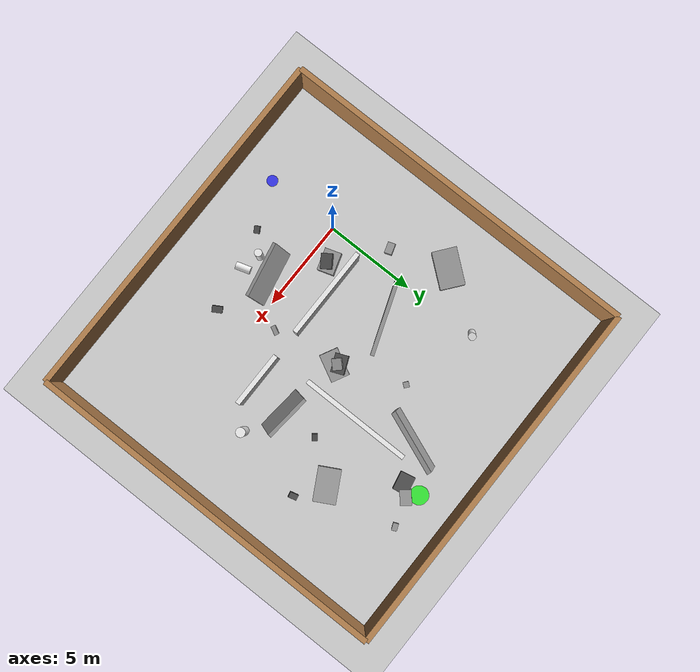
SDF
<?xml version="1.0" ?>
<sdf version="1.6">
  <world name="disaster_collapsed_building">

    <!--  PHYSICS                                                      -->
    <physics name="default_physics" default="0" type="ode">
      <max_step_size>0.001</max_step_size>
      <real_time_factor>1.0</real_time_factor>
      <real_time_update_rate>1000.0</real_time_update_rate>
      <ode>
        <solver>
          <type>quick</type>
          <iters>150</iters>
          <precon_iters>0</precon_iters>
          <sor>1.400000</sor>
        </solver>
        <constraints>
          <cfm>0</cfm>
          <erp>0.2</erp>
          <contact_max_correcting_vel>2000</contact_max_correcting_vel>
          <contact_surface_layer>0.01</contact_surface_layer>
        </constraints>
      </ode>
    </physics>

    <!--  SCENE (reduced lighting to simulate disaster atmosphere)    -->
    <scene>
      <ambient>0.3 0.25 0.2 1</ambient>
      <background>0.4 0.35 0.3 1</background>
      <shadows>true</shadows>
      <sky>
        <clouds>
          <speed>4</speed>
        </clouds>
      </sky>
    </scene>

    <!--  SUN (angled low — simulates dust-filtered post-disaster sky) -->
    <light name="disaster_sun" type="directional">
      <cast_shadows>true</cast_shadows>
      <pose>0 0 20 0 0.4 0.7</pose>
      <diffuse>0.7 0.65 0.5 1</diffuse>
      <specular>0.1 0.1 0.08 1</specular>
      <direction>-0.5 0.3 -0.7</direction>
      <attenuation>
        <range>1000</range>
        <constant>0.9</constant>
        <linear>0.01</linear>
        <quadratic>0.001</quadratic>
      </attenuation>
    </light>

    <!-- Dim fill light from above -->
    <light name="fill_light" type="point">
      <pose>5 3 8 0 0 0</pose>
      <diffuse>0.3 0.28 0.25 1</diffuse>
      <specular>0.05 0.05 0.05 1</specular>
      <attenuation>
        <range>20</range>
        <constant>0.7</constant>
        <linear>0.1</linear>
        <quadratic>0.01</quadratic>
      </attenuation>
    </light>

    <!--  GROUND PLANE (cracked concrete texture)                     -->
    <model name="ground_plane">
      <static>true</static>
      <link name="link">
        <collision name="collision">
          <geometry>
            <plane>
              <normal>0 0 1</normal>
              <size>30 30</size>
            </plane>
          </geometry>
          <surface>
            <friction>
              <ode>
                <mu>0.8</mu>
                <mu2>0.8</mu2>
              </ode>
            </friction>
          </surface>
        </collision>
        <visual name="visual">
          <cast_shadows>false</cast_shadows>
          <geometry>
            <plane>
              <normal>0 0 1</normal>
              <size>30 30</size>
            </plane>
          </geometry>
          <material>
            <script>
              <uri>file://media/materials/scripts/gazebo.material</uri>
              <name>Gazebo/Grey</name>
            </script>
          </material>
        </visual>
      </link>
    </model>

    <!--  BOUNDARY WALLS (outer perimeter of the building)            -->

    <!-- South wall (entrance side) -->
    <model name="boundary_south">
      <static>true</static>
      <pose>5 -6 1.0 0 0 0</pose>
      <link name="link">
        <collision name="collision">
          <geometry><box><size>20 0.3 2.0</size></box></geometry>
        </collision>
        <visual name="visual">
          <geometry><box><size>20 0.3 2.0</size></box></geometry>
          <material><script><uri>file://media/materials/scripts/gazebo.material</uri><name>Gazebo/WoodFloor</name></script></material>
        </visual>
      </link>
    </model>

    <!-- North wall -->
    <model name="boundary_north">
      <static>true</static>
      <pose>5 14 1.0 0 0 0</pose>
      <link name="link">
        <collision name="collision">
          <geometry><box><size>20 0.3 2.0</size></box></geometry>
        </collision>
        <visual name="visual">
          <geometry><box><size>20 0.3 2.0</size></box></geometry>
          <material><script><uri>file://media/materials/scripts/gazebo.material</uri><name>Gazebo/WoodFloor</name></script></material>
        </visual>
      </link>
    </model>

    <!-- West wall -->
    <model name="boundary_west">
      <static>true</static>
      <pose>-5 4 1.0 0 0 1.5708</pose>
      <link name="link">
        <collision name="collision">
          <geometry><box><size>20 0.3 2.0</size></box></geometry>
        </collision>
        <visual name="visual">
          <geometry><box><size>20 0.3 2.0</size></box></geometry>
          <material><script><uri>file://media/materials/scripts/gazebo.material</uri><name>Gazebo/WoodFloor</name></script></material>
        </visual>
      </link>
    </model>

    <!-- East wall -->
    <model name="boundary_east">
      <static>true</static>
      <pose>15 4 1.0 0 0 1.5708</pose>
      <link name="link">
        <collision name="collision">
          <geometry><box><size>20 0.3 2.0</size></box></geometry>
        </collision>
        <visual name="visual">
          <geometry><box><size>20 0.3 2.0</size></box></geometry>
          <material><script><uri>file://media/materials/scripts/gazebo.material</uri><name>Gazebo/WoodFloor</name></script></material>
        </visual>
      </link>
    </model>

    <!--  INTERIOR WALLS (building room dividers, partially standing) -->

    <!-- Interior wall 1 — partial east-west divider (room 1 vs room 2) -->
    <model name="interior_wall_1a">
      <static>true</static>
      <pose>3 2 0.9 0 0 0</pose>
      <link name="link">
        <collision name="collision">
          <geometry><box><size>5 0.25 1.8</size></box></geometry>
        </collision>
        <visual name="visual">
          <geometry><box><size>5 0.25 1.8</size></box></geometry>
          <material><script><uri>file://media/materials/scripts/gazebo.material</uri><name>Gazebo/White</name></script></material>
        </visual>
      </link>
    </model>

    <!-- Gap in wall 1 (simulates wall collapse) — continues on the other side -->
    <model name="interior_wall_1b">
      <static>true</static>
      <pose>8.5 2 0.9 0 0 0</pose>
      <link name="link">
        <collision name="collision">
          <geometry><box><size>3 0.25 1.8</size></box></geometry>
        </collision>
        <visual name="visual">
          <geometry><box><size>3 0.25 1.8</size></box></geometry>
          <material><script><uri>file://media/materials/scripts/gazebo.material</uri><name>Gazebo/White</name></script></material>
        </visual>
      </link>
    </model>

    <!-- Interior wall 2 — north-south partial divider (room 2 corridor) -->
    <model name="interior_wall_2">
      <static>true</static>
      <pose>7 7 0.9 0 0 1.5708</pose>
      <link name="link">
        <collision name="collision">
          <geometry><box><size>6 0.25 1.8</size></box></geometry>
        </collision>
        <visual name="visual">
          <geometry><box><size>6 0.25 1.8</size></box></geometry>
          <material><script><uri>file://media/materials/scripts/gazebo.material</uri><name>Gazebo/White</name></script></material>
        </visual>
      </link>
    </model>

    <!--  COLLAPSED WALL SECTIONS (tilted, fallen)                    -->

    <!-- Collapsed wall A — tilted 30° forward, blocking corridor -->
    <model name="collapsed_wall_A">
      <static>true</static>
      <pose>4 -1 0.6 0.52 0 0.2</pose>
      <link name="link">
        <collision name="collision">
          <geometry><box><size>3.0 0.2 1.5</size></box></geometry>
          <surface><friction><ode><mu>1.0</mu><mu2>1.0</mu2></ode></friction></surface>
        </collision>
        <visual name="visual">
          <geometry><box><size>3.0 0.2 1.5</size></box></geometry>
          <material><script><uri>file://media/materials/scripts/gazebo.material</uri><name>Gazebo/Grey</name></script></material>
        </visual>
      </link>
    </model>

    <!-- Collapsed wall B — fallen flat, acts as floor obstacle/ramp -->
    <model name="collapsed_wall_B">
      <static>true</static>
      <pose>2 5 0.15 0 0.15 0.35</pose>
      <link name="link">
        <collision name="collision">
          <geometry><box><size>4.0 0.2 1.2</size></box></geometry>
        </collision>
        <visual name="visual">
          <geometry><box><size>4.0 0.2 1.2</size></box></geometry>
          <material><script><uri>file://media/materials/scripts/gazebo.material</uri><name>Gazebo/Grey</name></script></material>
        </visual>
      </link>
    </model>

    <!-- Collapsed wall C — leaning against rubble, creates narrow passage -->
    <model name="collapsed_wall_C">
      <static>true</static>
      <pose>9 4 0.7 -0.4 0 -0.1</pose>
      <link name="link">
        <collision name="collision">
          <geometry><box><size>2.5 0.2 1.8</size></box></geometry>
        </collision>
        <visual name="visual">
          <geometry><box><size>2.5 0.2 1.8</size></box></geometry>
          <material><script><uri>file://media/materials/scripts/gazebo.material</uri><name>Gazebo/Grey</name></script></material>
        </visual>
      </link>
    </model>

    <!-- Collapsed wall D — partially blocks the far room entrance -->
    <model name="collapsed_wall_D">
      <static>true</static>
      <pose>6 10 0.5 0.3 0 1.2</pose>
      <link name="link">
        <collision name="collision">
          <geometry><box><size>3.5 0.25 1.4</size></box></geometry>
        </collision>
        <visual name="visual">
          <geometry><box><size>3.5 0.25 1.4</size></box></geometry>
          <material><script><uri>file://media/materials/scripts/gazebo.material</uri><name>Gazebo/Grey</name></script></material>
        </visual>
      </link>
    </model>

    <!--  RUBBLE PILES (irregular debris clusters)                    -->

    <!-- Rubble pile 1 — entrance area, forces robot to navigate around -->
    <model name="rubble_pile_1_base">
      <static>true</static>
      <pose>1.5 1.0 0.2 0.1 0.05 0.3</pose>
      <link name="link">
        <collision name="collision"><geometry><box><size>1.2 0.9 0.4</size></box></geometry></collision>
        <visual name="visual">
          <geometry><box><size>1.2 0.9 0.4</size></box></geometry>
          <material><script><uri>file://media/materials/scripts/gazebo.material</uri><name>Gazebo/Grey</name></script></material>
        </visual>
      </link>
    </model>
    <model name="rubble_pile_1_top">
      <static>true</static>
      <pose>1.6 0.9 0.5 0.2 0.1 0.6</pose>
      <link name="link">
        <collision name="collision"><geometry><box><size>0.8 0.6 0.3</size></box></geometry></collision>
        <visual name="visual">
          <geometry><box><size>0.8 0.6 0.3</size></box></geometry>
          <material><script><uri>file://media/materials/scripts/gazebo.material</uri><name>Gazebo/DarkGrey</name></script></material>
        </visual>
      </link>
    </model>

    <!-- Rubble pile 2 — mid-corridor, forces narrow passage -->
    <model name="rubble_pile_2_base">
      <static>true</static>
      <pose>5.5 4.5 0.25 0.05 0.1 1.1</pose>
      <link name="link">
        <collision name="collision"><geometry><box><size>1.5 1.0 0.5</size></box></geometry></collision>
        <visual name="visual">
          <geometry><box><size>1.5 1.0 0.5</size></box></geometry>
          <material><script><uri>file://media/materials/scripts/gazebo.material</uri><name>Gazebo/Grey</name></script></material>
        </visual>
      </link>
    </model>
    <model name="rubble_pile_2_mid">
      <static>true</static>
      <pose>5.3 4.7 0.6 0.15 0.05 0.4</pose>
      <link name="link">
        <collision name="collision"><geometry><box><size>1.0 0.7 0.3</size></box></geometry></collision>
        <visual name="visual">
          <geometry><box><size>1.0 0.7 0.3</size></box></geometry>
          <material><script><uri>file://media/materials/scripts/gazebo.material</uri><name>Gazebo/DarkGrey</name></script></material>
        </visual>
      </link>
    </model>
    <model name="rubble_pile_2_top">
      <static>true</static>
      <pose>5.4 4.6 0.85 0.2 0.15 0.8</pose>
      <link name="link">
        <collision name="collision"><geometry><box><size>0.6 0.5 0.25</size></box></geometry></collision>
        <visual name="visual">
          <geometry><box><size>0.6 0.5 0.25</size></box></geometry>
          <material><script><uri>file://media/materials/scripts/gazebo.material</uri><name>Gazebo/Grey</name></script></material>
        </visual>
      </link>
    </model>

    <!-- Rubble pile 3 — corner obstruction near goal -->
    <model name="rubble_pile_3_base">
      <static>true</static>
      <pose>10.5 8 0.2 0.0 0.0 0.5</pose>
      <link name="link">
        <collision name="collision"><geometry><box><size>1.8 1.2 0.4</size></box></geometry></collision>
        <visual name="visual">
          <geometry><box><size>1.8 1.2 0.4</size></box></geometry>
          <material><script><uri>file://media/materials/scripts/gazebo.material</uri><name>Gazebo/Grey</name></script></material>
        </visual>
      </link>
    </model>

    <!-- Rubble pile 4 — against west side, creates dead-end illusion -->
    <model name="rubble_pile_4">
      <static>true</static>
      <pose>-2 6 0.3 0.1 0.05 0.9</pose>
      <link name="link">
        <collision name="collision"><geometry><box><size>2.0 1.3 0.6</size></box></geometry></collision>
        <visual name="visual">
          <geometry><box><size>2.0 1.3 0.6</size></box></geometry>
          <material><script><uri>file://media/materials/scripts/gazebo.material</uri><name>Gazebo/Grey</name></script></material>
        </visual>
      </link>
    </model>

    <!-- Rubble pile 5 — corridor to final room -->
    <model name="rubble_pile_5_a">
      <static>true</static>
      <pose>8 11 0.15 0 0 0.2</pose>
      <link name="link">
        <collision name="collision"><geometry><box><size>1.0 0.8 0.3</size></box></geometry></collision>
        <visual name="visual">
          <geometry><box><size>1.0 0.8 0.3</size></box></geometry>
          <material><script><uri>file://media/materials/scripts/gazebo.material</uri><name>Gazebo/DarkGrey</name></script></material>
        </visual>
      </link>
    </model>
    <model name="rubble_pile_5_b">
      <static>true</static>
      <pose>8.5 11.5 0.2 0.1 0 0.7</pose>
      <link name="link">
        <collision name="collision"><geometry><box><size>0.8 0.6 0.4</size></box></geometry></collision>
        <visual name="visual">
          <geometry><box><size>0.8 0.6 0.4</size></box></geometry>
          <material><script><uri>file://media/materials/scripts/gazebo.material</uri><name>Gazebo/Grey</name></script></material>
        </visual>
      </link>
    </model>

    <!--  BROKEN PILLARS (partial vertical obstructions)              -->

    <!-- Pillar 1 — broken at mid-height, still standing partially -->
    <model name="broken_pillar_1">
      <static>true</static>
      <pose>3.5 -2 0.6 0 0 0</pose>
      <link name="link">
        <collision name="collision"><geometry><cylinder><radius>0.2</radius><length>1.2</length></cylinder></geometry></collision>
        <visual name="visual">
          <geometry><cylinder><radius>0.2</radius><length>1.2</length></cylinder></geometry>
          <material><script><uri>file://media/materials/scripts/gazebo.material</uri><name>Gazebo/White</name></script></material>
        </visual>
      </link>
    </model>
    <!-- Fallen top section of pillar 1 -->
    <model name="broken_pillar_1_top">
      <static>true</static>
      <pose>4.5 -2.3 0.1 1.5708 0 0.3</pose>
      <link name="link">
        <collision name="collision"><geometry><cylinder><radius>0.2</radius><length>0.8</length></cylinder></geometry></collision>
        <visual name="visual">
          <geometry><cylinder><radius>0.2</radius><length>0.8</length></cylinder></geometry>
          <material><script><uri>file://media/materials/scripts/gazebo.material</uri><name>Gazebo/White</name></script></material>
        </visual>
      </link>
    </model>

    <!-- Pillar 2 — intact but surrounded by debris -->
    <model name="broken_pillar_2">
      <static>true</static>
      <pose>11 3 0.9 0 0 0</pose>
      <link name="link">
        <collision name="collision"><geometry><cylinder><radius>0.25</radius><length>1.8</length></cylinder></geometry></collision>
        <visual name="visual">
          <geometry><cylinder><radius>0.25</radius><length>1.8</length></cylinder></geometry>
          <material><script><uri>file://media/materials/scripts/gazebo.material</uri><name>Gazebo/White</name></script></material>
        </visual>
      </link>
    </model>

    <!-- Pillar 3 — tilted, propped against wall -->
    <model name="broken_pillar_3">
      <static>true</static>
      <pose>0 9 0.8 0 0.25 0</pose>
      <link name="link">
        <collision name="collision"><geometry><cylinder><radius>0.2</radius><length>1.6</length></cylinder></geometry></collision>
        <visual name="visual">
          <geometry><cylinder><radius>0.2</radius><length>1.6</length></cylinder></geometry>
          <material><script><uri>file://media/materials/scripts/gazebo.material</uri><name>Gazebo/White</name></script></material>
        </visual>
      </link>
    </model>

    <!--  SCATTERED DEBRIS (small individual blocks)                  -->

    <model name="debris_1"><static>true</static><pose>2.5 -3 0.1 0.1 0.2 0.5</pose><link name="link"><collision name="c"><geometry><box><size>0.4 0.3 0.2</size></box></geometry></collision><visual name="v"><geometry><box><size>0.4 0.3 0.2</size></box></geometry><material><script><uri>file://media/materials/scripts/gazebo.material</uri><name>Gazebo/DarkGrey</name></script></material></visual></link></model>

    <model name="debris_2"><static>true</static><pose>6 1 0.1 0.2 0.1 1.1</pose><link name="link"><collision name="c"><geometry><box><size>0.5 0.25 0.15</size></box></geometry></collision><visual name="v"><geometry><box><size>0.5 0.25 0.15</size></box></geometry><material><script><uri>file://media/materials/scripts/gazebo.material</uri><name>Gazebo/Grey</name></script></material></visual></link></model>

    <model name="debris_3"><static>true</static><pose>9 6 0.1 0.0 0.3 0.7</pose><link name="link"><collision name="c"><geometry><box><size>0.35 0.3 0.2</size></box></geometry></collision><visual name="v"><geometry><box><size>0.35 0.3 0.2</size></box></geometry><material><script><uri>file://media/materials/scripts/gazebo.material</uri><name>Gazebo/DarkGrey</name></script></material></visual></link></model>

    <model name="debris_4"><static>true</static><pose>-1 3 0.1 0.15 0.0 0.3</pose><link name="link"><collision name="c"><geometry><box><size>0.6 0.4 0.25</size></box></geometry></collision><visual name="v"><geometry><box><size>0.6 0.4 0.25</size></box></geometry><material><script><uri>file://media/materials/scripts/gazebo.material</uri><name>Gazebo/Grey</name></script></material></visual></link></model>

    <model name="debris_5"><static>true</static><pose>12 7 0.1 0.05 0.2 1.8</pose><link name="link"><collision name="c"><geometry><box><size>0.45 0.3 0.18</size></box></geometry></collision><visual name="v"><geometry><box><size>0.45 0.3 0.18</size></box></geometry><material><script><uri>file://media/materials/scripts/gazebo.material</uri><name>Gazebo/DarkGrey</name></script></material></visual></link></model>

    <model name="debris_6"><static>true</static><pose>4 8 0.1 0.1 0.1 0.9</pose><link name="link"><collision name="c"><geometry><box><size>0.3 0.3 0.15</size></box></geometry></collision><visual name="v"><geometry><box><size>0.3 0.3 0.15</size></box></geometry><material><script><uri>file://media/materials/scripts/gazebo.material</uri><name>Gazebo/Grey</name></script></material></visual></link></model>

    <model name="debris_7"><static>true</static><pose>7 -2 0.12 0.2 0.05 2.1</pose><link name="link"><collision name="c"><geometry><box><size>0.55 0.35 0.22</size></box></geometry></collision><visual name="v"><geometry><box><size>0.55 0.35 0.22</size></box></geometry><material><script><uri>file://media/materials/scripts/gazebo.material</uri><name>Gazebo/DarkGrey</name></script></material></visual></link></model>

    <model name="debris_8"><static>true</static><pose>10 12 0.1 0 0.1 0.4</pose><link name="link"><collision name="c"><geometry><box><size>0.4 0.28 0.16</size></box></geometry></collision><visual name="v"><geometry><box><size>0.4 0.28 0.16</size></box></geometry><material><script><uri>file://media/materials/scripts/gazebo.material</uri><name>Gazebo/Grey</name></script></material></visual></link></model>

    <!--  SMOKE / DUST PARTICLE EFFECT (visual atmosphere)            -->
    <model name="dust_emitter_1">
      <static>true</static>
      <pose>5 5 0.1 0 0 0</pose>
      <link name="link">
        <visual name="smoke_visual">
          <geometry>
            <box><size>0.01 0.01 0.01</size></box>
          </geometry>
          <material>
            <script>
              <uri>file://media/materials/scripts/smoke.material</uri>
              <name>Gazebo/Smoke</name>
            </script>
          </material>
          <plugin name="particle_emitter" filename="libgazebo_ros_particle_emitter.so">
            <robotNamespace>/dust</robotNamespace>
            <type>box</type>
            <size>3 3 0.5</size>
            <rate>20</rate>
            <duration>0</duration>
            <emitting>true</emitting>
            <particle_size>0.5 0.5 0.5</particle_size>
            <lifetime>4.0</lifetime>
            <min_velocity>0.0 0.0 0.05</min_velocity>
            <max_velocity>0.05 0.05 0.15</max_velocity>
            <color_start>0.8 0.75 0.6 0.15</color_start>
            <color_end>0.9 0.88 0.8 0.0</color_end>
          </plugin>
        </visual>
        <collision name="coll">
          <geometry><box><size>0.01 0.01 0.01</size></box></geometry>
        </collision>
      </link>
    </model>

    <!--  GOAL MARKER (visual indicator of target location)           -->
    <model name="goal_marker">
      <static>true</static>
      <pose>8 12 0.05 0 0 0</pose>
      <link name="link">
        <visual name="visual">
          <geometry><cylinder><radius>0.5</radius><length>0.02</length></cylinder></geometry>
          <material>
            <ambient>0 1 0 0.7</ambient>
            <diffuse>0 1 0 0.7</diffuse>
          </material>
        </visual>
        <collision name="collision">
          <geometry><cylinder><radius>0.5</radius><length>0.02</length></cylinder></geometry>
        </collision>
      </link>
    </model>

    <!--  SPAWN POINT MARKER (visual, near entrance)                  -->
    <model name="spawn_marker">
      <static>true</static>
      <pose>0 -4 0.05 0 0 0</pose>
      <link name="link">
        <visual name="visual">
          <geometry><cylinder><radius>0.3</radius><length>0.02</length></cylinder></geometry>
          <material>
            <ambient>0 0 1 0.7</ambient>
            <diffuse>0 0 1 0.7</diffuse>
          </material>
        </visual>
        <collision name="collision">
          <geometry><cylinder><radius>0.3</radius><length>0.02</length></cylinder></geometry>
        </collision>
      </link>
    </model>

    <!--  ROS GAZEBO PLUGINS                                           -->
    <plugin name="gazebo_ros_state" filename="libgazebo_ros_state.so">
      <ros>
        <namespace>/</namespace>
      </ros>
      <update_rate>1.0</update_rate>
    </plugin>

  </world>
</sdf>
